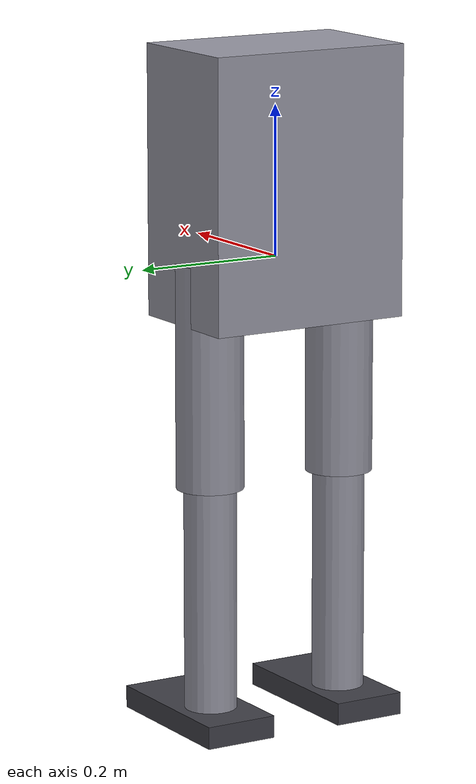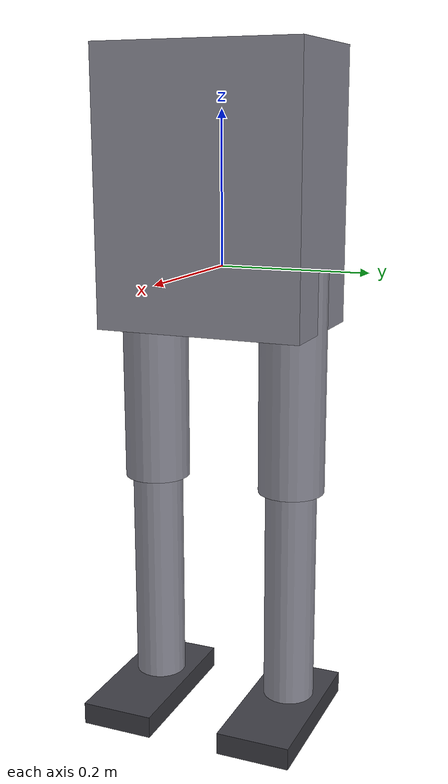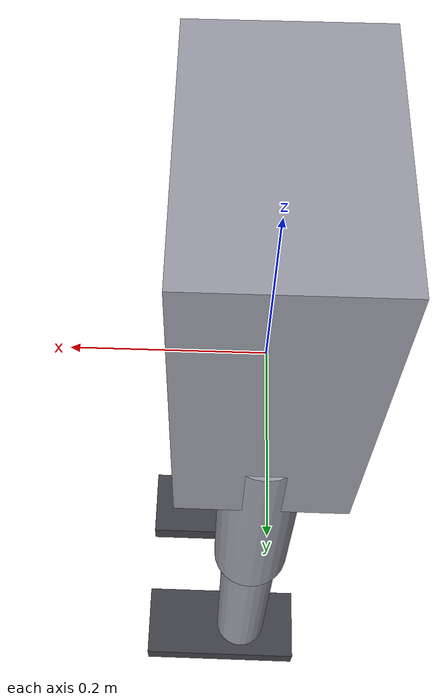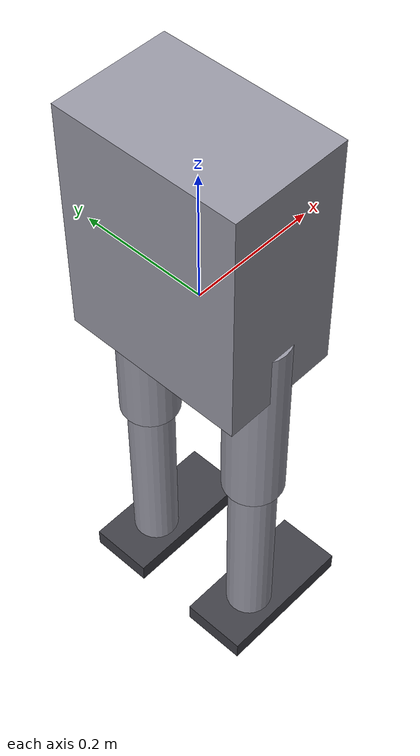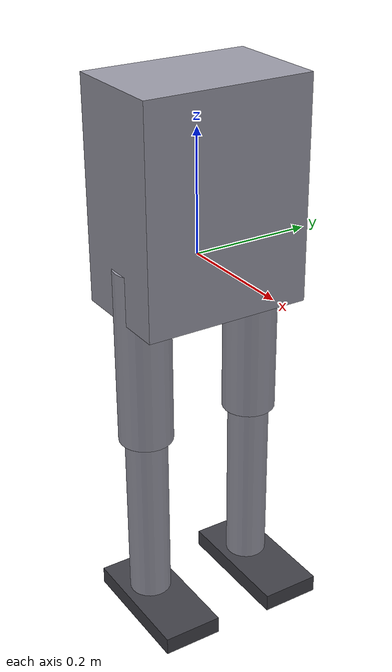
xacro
<?xml version="1.0"?>
<robot name="humanoid_lab_biped" xmlns:xacro="http://www.ros.org/wiki/xacro">

  <xacro:property name="thigh_length" value="0.30"/>
  <xacro:property name="shank_length" value="0.30"/>
  <xacro:property name="hip_width" value="0.20"/>
  <xacro:property name="link_radius" value="0.045"/>

  <material name="grey"><color rgba="0.6 0.6 0.65 1.0"/></material>
  <material name="dark"><color rgba="0.25 0.25 0.28 1.0"/></material>

  <link name="base_link"/>

  <link name="torso_link">
    <visual>
      <origin xyz="0 0 0.10"/>
      <geometry><box size="0.18 0.28 0.36"/></geometry>
      <material name="grey"/>
    </visual>
    <inertial>
      <mass value="12.0"/>
      <origin xyz="0 0 0.10"/>
      <inertia ixx="0.15" iyy="0.12" izz="0.10" ixy="0" ixz="0" iyz="0"/>
    </inertial>
  </link>
  <joint name="base_to_torso" type="fixed">
    <parent link="base_link"/>
    <child link="torso_link"/>
  </joint>

  <xacro:macro name="leg" params="side y_sign roll_yaw_sign">
    <link name="${side}_hip_yaw_link">
      <visual><geometry><sphere radius="0.035"/></geometry><material name="dark"/></visual>
      <inertial><mass value="0.4"/><inertia ixx="0.0003" iyy="0.0003" izz="0.0003" ixy="0" ixz="0" iyz="0"/></inertial>
    </link>
    <joint name="${side}_hip_yaw_joint" type="revolute">
      <parent link="torso_link"/>
      <child link="${side}_hip_yaw_link"/>
      <origin xyz="0 ${y_sign * 0.10} 0"/>
      <axis xyz="0 0 ${roll_yaw_sign}"/>
      <limit lower="-0.6" upper="0.6" effort="60" velocity="4"/>
    </joint>

    <link name="${side}_hip_roll_link">
      <visual><geometry><sphere radius="0.035"/></geometry><material name="dark"/></visual>
      <inertial><mass value="0.4"/><inertia ixx="0.0003" iyy="0.0003" izz="0.0003" ixy="0" ixz="0" iyz="0"/></inertial>
    </link>
    <joint name="${side}_hip_roll_joint" type="revolute">
      <parent link="${side}_hip_yaw_link"/>
      <child link="${side}_hip_roll_link"/>
      <axis xyz="${roll_yaw_sign} 0 0"/>
      <limit lower="-0.5" upper="0.5" effort="60" velocity="4"/>
    </joint>

    <link name="${side}_thigh_link">
      <visual>
        <origin xyz="0 0 ${-thigh_length/2}"/>
        <geometry><cylinder radius="${link_radius}" length="${thigh_length}"/></geometry>
        <material name="grey"/>
      </visual>
      <inertial>
        <mass value="3.0"/>
        <origin xyz="0 0 ${-thigh_length/2}"/>
        <inertia ixx="0.03" iyy="0.03" izz="0.004" ixy="0" ixz="0" iyz="0"/>
      </inertial>
    </link>
    <joint name="${side}_hip_pitch_joint" type="revolute">
      <parent link="${side}_hip_roll_link"/>
      <child link="${side}_thigh_link"/>
      <axis xyz="0 -1 0"/>
      <limit lower="-1.8" upper="1.2" effort="100" velocity="6"/>
    </joint>

    <link name="${side}_shank_link">
      <visual>
        <origin xyz="0 0 ${-shank_length/2}"/>
        <geometry><cylinder radius="0.035" length="${shank_length}"/></geometry>
        <material name="grey"/>
      </visual>
      <inertial>
        <mass value="2.0"/>
        <origin xyz="0 0 ${-shank_length/2}"/>
        <inertia ixx="0.02" iyy="0.02" izz="0.003" ixy="0" ixz="0" iyz="0"/>
      </inertial>
    </link>
    <joint name="${side}_knee_pitch_joint" type="revolute">
      <parent link="${side}_thigh_link"/>
      <child link="${side}_shank_link"/>
      <origin xyz="0 0 ${-thigh_length}"/>
      <axis xyz="0 -1 0"/>
      <limit lower="0.0" upper="2.5" effort="100" velocity="6"/>
    </joint>

    <link name="${side}_ankle_pitch_link">
      <visual><geometry><sphere radius="0.02"/></geometry><material name="dark"/></visual>
      <inertial><mass value="0.15"/><inertia ixx="0.0001" iyy="0.0001" izz="0.0001" ixy="0" ixz="0" iyz="0"/></inertial>
    </link>
    <joint name="${side}_ankle_pitch_joint" type="revolute">
      <parent link="${side}_shank_link"/>
      <child link="${side}_ankle_pitch_link"/>
      <origin xyz="0 0 ${-shank_length}"/>
      <axis xyz="0 -1 0"/>
      <limit lower="-1.0" upper="1.0" effort="60" velocity="6"/>
    </joint>

    <link name="${side}_foot_link">
      <visual>
        <origin xyz="0.03 0 -0.015"/>
        <geometry><box size="0.22 0.10 0.03"/></geometry>
        <material name="dark"/>
      </visual>
      <collision>
        <origin xyz="0.03 0 -0.015"/>
        <geometry><box size="0.22 0.10 0.03"/></geometry>
      </collision>
      <inertial>
        <mass value="0.5"/>
        <origin xyz="0.03 0 -0.015"/>
        <inertia ixx="0.0004" iyy="0.001" izz="0.001" ixy="0" ixz="0" iyz="0"/>
      </inertial>
    </link>
    <joint name="${side}_ankle_roll_joint" type="revolute">
      <parent link="${side}_ankle_pitch_link"/>
      <child link="${side}_foot_link"/>
      <axis xyz="${roll_yaw_sign} 0 0"/>
      <limit lower="-0.5" upper="0.5" effort="60" velocity="4"/>
    </joint>
  </xacro:macro>

  <xacro:leg side="right" y_sign="-1" roll_yaw_sign="1"/>
  <xacro:leg side="left" y_sign="1" roll_yaw_sign="-1"/>
</robot>
